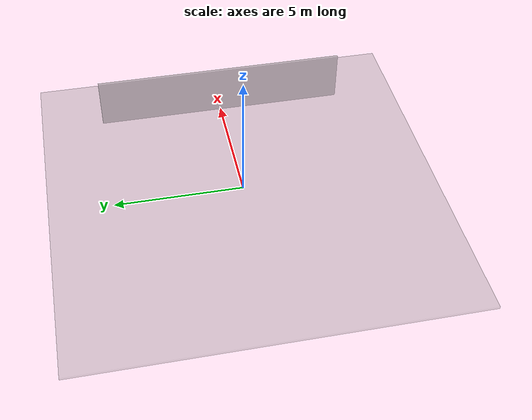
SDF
<?xml version="1.0" ?>
<sdf version="1.10">
  <world name="haus">
    <!-- 设置重力 -->
    <gravity>0 0 -9.81</gravity>

    <!-- 设置光源 -->
    <light name="sun" type="directional">
      <pose>0 0 10 0 0 0</pose>
      <diffuse>1 1 1 1</diffuse>
      <specular>1 1 1 1</specular>
      <attenuation>
        <range>1000</range>
        <constant>0.5</constant>
        <linear>0.05</linear>
        <quadratic>0.002</quadratic>
      </attenuation>
    </light>

    <!-- 创建地面，确保它是静态物体 -->
    <model name="floor">
      <pose>0 0 0 0 0 0</pose>
      <static>true</static>  <!-- 让地面变为静态物体 -->
      <link name="link">
        <collision name="collision">
          <geometry>
            <box>
              <size>15 15 0.1</size>
            </box>
          </geometry>
        </collision>
        <visual name="visual">
          <geometry>
            <box>
              <size>15 15 0.1</size>
            </box>
          </geometry>
          <material>
            <ambient>0.2 0.2 0.2 0.2</ambient> <!-- 浅灰色透明 -->
            <diffuse>0.2 0.2 0.2 0.2</diffuse> <!-- 浅灰色透明 -->
            <specular>0.2 0.2 0.2 0.1</specular>
          </material>
        </visual>
      </link>
    </model>
    <model name="wall1">
      <pose>4.95 0 1.05 0 0 0</pose> <!-- 调整墙体位置 -->
      <link name="link">
        <collision name="collision">
          <geometry>
            <box>
              <size>0.1 10 2</size>
            </box>
          </geometry>
        </collision>
        <visual name="visual">
          <geometry>
            <box>
              <size>0.1 10 2</size>
            </box>
          </geometry>
          <material>
            <ambient>0.5 0.5 0.5 0.5</ambient> <!-- 设置带透明度的墙 -->
            <diffuse>0.5 0.5 0.5 0.5</diffuse>
            <specular>0.2 0.2 0.2 0.5</specular>
          </material>
        </visual>
      </link>
    </model>
  </world>
</sdf>
